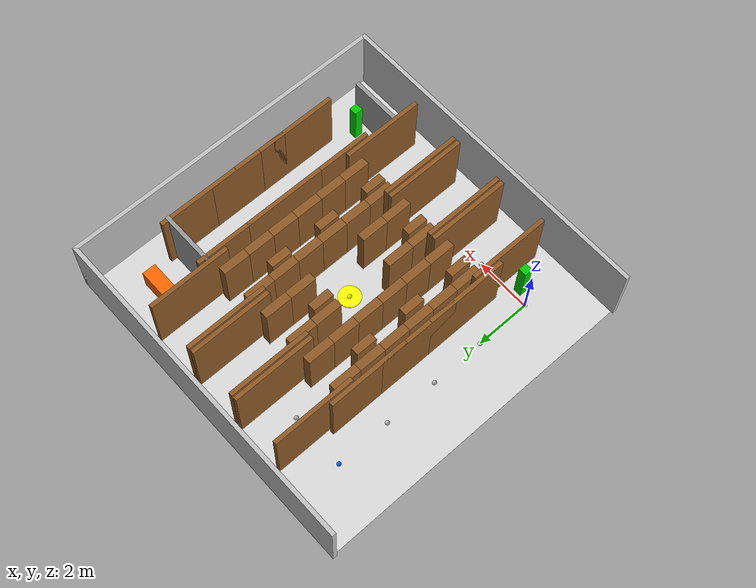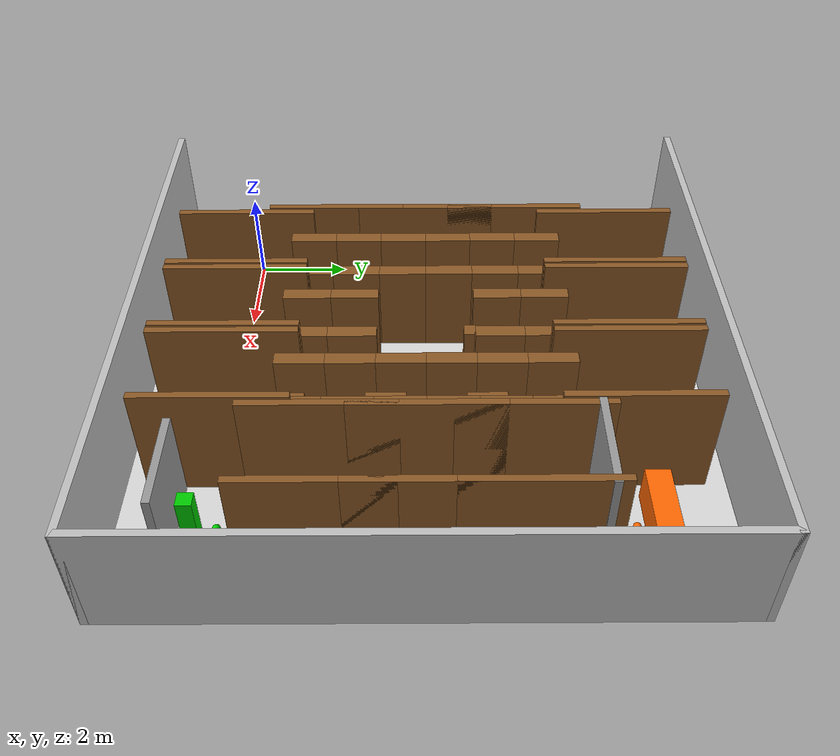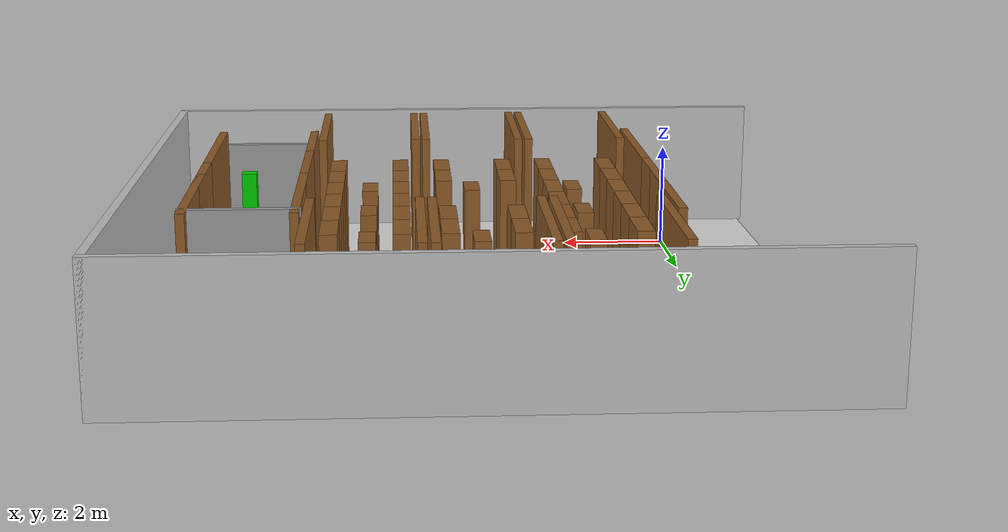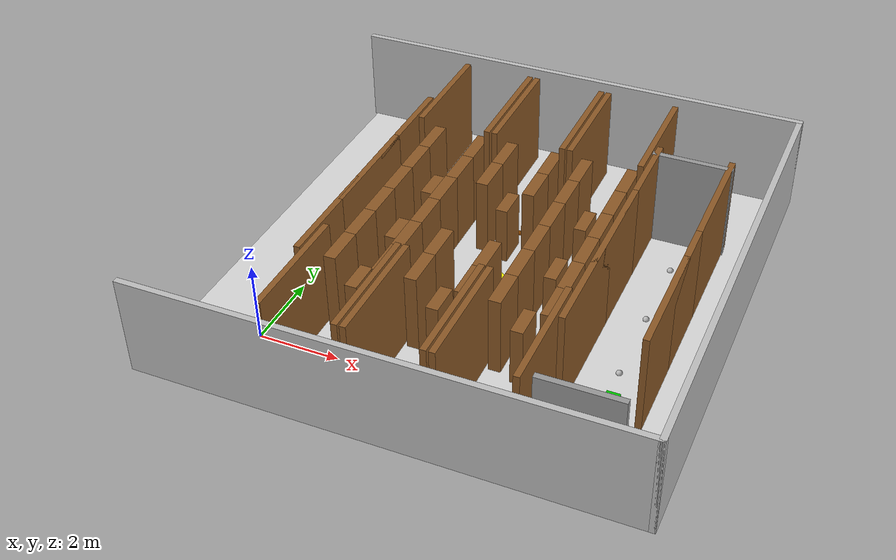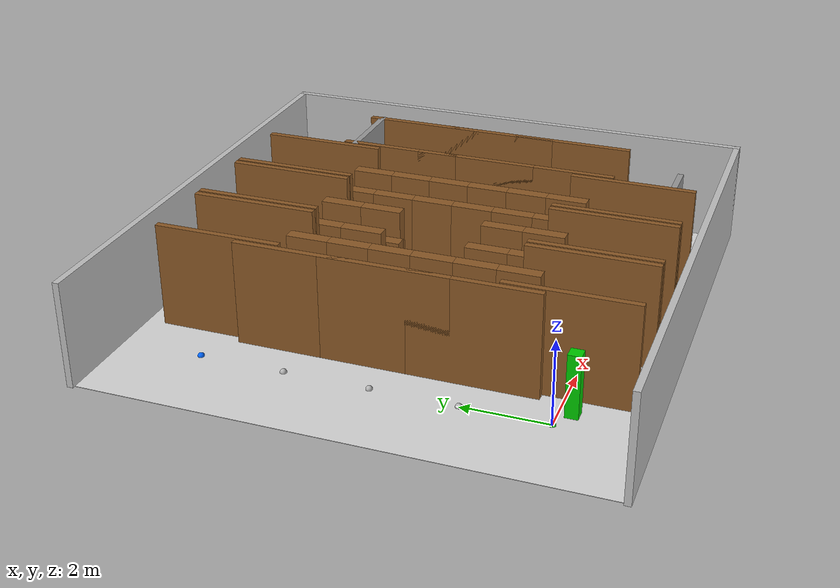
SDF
<sdf version="1.9">
 <world name="simple_5x5_grid">
  <model name="ground_plane">
   <static>true</static>
   <pose>4.0 4.0 0 0 0 0</pose>
   <link name="ground_link">
    <visual name="ground_visual">
     <geometry><box><size>12.0 12.0 0.01</size></box></geometry>
     <material><ambient>0.85 0.85 0.85 1.0</ambient><diffuse>0.85 0.85 0.85 1.0</diffuse></material>
    </visual>
    <collision name="ground_visual_collision">
     <geometry><box><size>12.0 12.0 0.01</size></box></geometry>
    </collision>
    <collision name="ground_collision">
     <geometry><plane><normal>0 0 1</normal><size>12.0 12.0</size></plane></geometry>
    </collision>
   </link>
  </model>
  <model name="wall_north">
   <static>true</static>
   <pose>4.0 10.0 1.25 0 0 0</pose>
   <link name="wall_north_link">
    <visual name="wall_north_visual">
     <geometry><box><size>12.15 0.15 2.5</size></box></geometry>
     <material><ambient>0.75 0.75 0.75 1.0</ambient><diffuse>0.75 0.75 0.75 1.0</diffuse></material>
    </visual>
    <collision name="wall_north_visual_collision">
     <geometry><box><size>12.15 0.15 2.5</size></box></geometry>
    </collision>
   </link>
  </model>
  <model name="wall_south">
   <static>true</static>
   <pose>4.0 -2.0 1.25 0 0 0</pose>
   <link name="wall_south_link">
    <visual name="wall_south_visual">
     <geometry><box><size>12.15 0.15 2.5</size></box></geometry>
     <material><ambient>0.75 0.75 0.75 1.0</ambient><diffuse>0.75 0.75 0.75 1.0</diffuse></material>
    </visual>
    <collision name="wall_south_visual_collision">
     <geometry><box><size>12.15 0.15 2.5</size></box></geometry>
    </collision>
   </link>
  </model>
  <model name="wall_east">
   <static>true</static>
   <pose>10.0 4.0 1.25 0 0 0</pose>
   <link name="wall_east_link">
    <visual name="wall_east_visual">
     <geometry><box><size>0.15 12.15 2.5</size></box></geometry>
     <material><ambient>0.75 0.75 0.75 1.0</ambient><diffuse>0.75 0.75 0.75 1.0</diffuse></material>
    </visual>
    <collision name="wall_east_visual_collision">
     <geometry><box><size>0.15 12.15 2.5</size></box></geometry>
    </collision>
   </link>
  </model>
  <model name="charger_DOCK_1_002">
   <static>true</static>
   <pose>0.5 -0.3 0.75 0 0 0</pose>
   <link name="charger_DOCK_1_002_link">
    <visual name="charger_DOCK_1_002_vis">
     <geometry><box><size>0.3 0.3 1.5</size></box></geometry>
     <material><ambient>0.0 0.8 0.0 1.0</ambient><diffuse>0.0 0.8 0.0 1.0</diffuse></material>
    </visual>
    <collision name="charger_DOCK_1_002_vis_collision">
     <geometry><box><size>0.3 0.3 1.5</size></box></geometry>
    </collision>
   </link>
  </model>
  <model name="aisle_L_N_01_003">
   <static>true</static>
   <pose>1.1 0 1.25 0 0 0</pose>
   <link name="aisle_L_N_01_003_link">
    <visual name="aisle_L_N_01_003_vis">
     <geometry><box><size>0.15 3.0 2.5</size></box></geometry>
     <material><ambient>0.55 0.35 0.15 1.0</ambient><diffuse>0.55 0.35 0.15 1.0</diffuse></material>
    </visual>
    <collision name="aisle_L_N_01_003_vis_collision">
     <geometry><box><size>0.15 3.0 2.5</size></box></geometry>
    </collision>
   </link>
  </model>
  <model name="aisle_R_N_01_004">
   <static>true</static>
   <pose>2.9 0 1.25 0 0 0</pose>
   <link name="aisle_R_N_01_004_link">
    <visual name="aisle_R_N_01_004_vis">
     <geometry><box><size>0.15 3.0 2.5</size></box></geometry>
     <material><ambient>0.55 0.35 0.15 1.0</ambient><diffuse>0.55 0.35 0.15 1.0</diffuse></material>
    </visual>
    <collision name="aisle_R_N_01_004_vis_collision">
     <geometry><box><size>0.15 3.0 2.5</size></box></geometry>
    </collision>
   </link>
  </model>
  <model name="aisle_L_N_02_005">
   <static>true</static>
   <pose>3.1 0 1.25 0 0 0</pose>
   <link name="aisle_L_N_02_005_link">
    <visual name="aisle_L_N_02_005_vis">
     <geometry><box><size>0.15 3.0 2.5</size></box></geometry>
     <material><ambient>0.55 0.35 0.15 1.0</ambient><diffuse>0.55 0.35 0.15 1.0</diffuse></material>
    </visual>
    <collision name="aisle_L_N_02_005_vis_collision">
     <geometry><box><size>0.15 3.0 2.5</size></box></geometry>
    </collision>
   </link>
  </model>
  <model name="aisle_R_N_02_006">
   <static>true</static>
   <pose>4.9 0 1.25 0 0 0</pose>
   <link name="aisle_R_N_02_006_link">
    <visual name="aisle_R_N_02_006_vis">
     <geometry><box><size>0.15 3.0 2.5</size></box></geometry>
     <material><ambient>0.55 0.35 0.15 1.0</ambient><diffuse>0.55 0.35 0.15 1.0</diffuse></material>
    </visual>
    <collision name="aisle_R_N_02_006_vis_collision">
     <geometry><box><size>0.15 3.0 2.5</size></box></geometry>
    </collision>
   </link>
  </model>
  <model name="aisle_L_N_03_007">
   <static>true</static>
   <pose>5.1 0 1.25 0 0 0</pose>
   <link name="aisle_L_N_03_007_link">
    <visual name="aisle_L_N_03_007_vis">
     <geometry><box><size>0.15 3.0 2.5</size></box></geometry>
     <material><ambient>0.55 0.35 0.15 1.0</ambient><diffuse>0.55 0.35 0.15 1.0</diffuse></material>
    </visual>
    <collision name="aisle_L_N_03_007_vis_collision">
     <geometry><box><size>0.15 3.0 2.5</size></box></geometry>
    </collision>
   </link>
  </model>
  <model name="aisle_R_N_03_008">
   <static>true</static>
   <pose>6.9 0 1.25 0 0 0</pose>
   <link name="aisle_R_N_03_008_link">
    <visual name="aisle_R_N_03_008_vis">
     <geometry><box><size>0.15 3.0 2.5</size></box></geometry>
     <material><ambient>0.55 0.35 0.15 1.0</ambient><diffuse>0.55 0.35 0.15 1.0</diffuse></material>
    </visual>
    <collision name="aisle_R_N_03_008_vis_collision">
     <geometry><box><size>0.15 3.0 2.5</size></box></geometry>
    </collision>
   </link>
  </model>
  <model name="dock_wall_DOCK_2_009">
   <static>true</static>
   <pose>8 -0.8 1.0 0 0 0</pose>
   <link name="dock_wall_DOCK_2_009_link">
    <visual name="dock_wall_DOCK_2_009_vis">
     <geometry><box><size>2.0 0.15 2.0</size></box></geometry>
     <material><ambient>0.6 0.6 0.6 1.0</ambient><diffuse>0.6 0.6 0.6 1.0</diffuse></material>
    </visual>
    <collision name="dock_wall_DOCK_2_009_vis_collision">
     <geometry><box><size>2.0 0.15 2.0</size></box></geometry>
    </collision>
   </link>
  </model>
  <model name="charger_DOCK_2_010">
   <static>true</static>
   <pose>8.5 -0.3 0.75 0 0 0</pose>
   <link name="charger_DOCK_2_010_link">
    <visual name="charger_DOCK_2_010_vis">
     <geometry><box><size>0.3 0.3 1.5</size></box></geometry>
     <material><ambient>0.0 0.8 0.0 1.0</ambient><diffuse>0.0 0.8 0.0 1.0</diffuse></material>
    </visual>
    <collision name="charger_DOCK_2_010_vis_collision">
     <geometry><box><size>0.3 0.3 1.5</size></box></geometry>
    </collision>
   </link>
  </model>
  <model name="aisle_R_N_10_012">
   <static>true</static>
   <pose>0.9 2 1.25 0 0 0</pose>
   <link name="aisle_R_N_10_012_link">
    <visual name="aisle_R_N_10_012_vis">
     <geometry><box><size>0.15 3.0 2.5</size></box></geometry>
     <material><ambient>0.55 0.35 0.15 1.0</ambient><diffuse>0.55 0.35 0.15 1.0</diffuse></material>
    </visual>
    <collision name="aisle_R_N_10_012_vis_collision">
     <geometry><box><size>0.15 3.0 2.5</size></box></geometry>
    </collision>
   </link>
  </model>
  <model name="rack_S_11_013">
   <static>true</static>
   <pose>1.4 1.5 1.0 0 0 0</pose>
   <link name="rack_S_11_013_link">
    <visual name="rack_S_11_013_vis">
     <geometry><box><size>0.3 1.0 2.0</size></box></geometry>
     <material><ambient>0.55 0.35 0.15 1.0</ambient><diffuse>0.55 0.35 0.15 1.0</diffuse></material>
    </visual>
    <collision name="rack_S_11_013_vis_collision">
     <geometry><box><size>0.3 1.0 2.0</size></box></geometry>
    </collision>
   </link>
  </model>
  <model name="rack_S_11_014">
   <static>true</static>
   <pose>1.4 2.5 1.0 0 0 0</pose>
   <link name="rack_S_11_014_link">
    <visual name="rack_S_11_014_vis">
     <geometry><box><size>0.3 1.0 2.0</size></box></geometry>
     <material><ambient>0.55 0.35 0.15 1.0</ambient><diffuse>0.55 0.35 0.15 1.0</diffuse></material>
    </visual>
    <collision name="rack_S_11_014_vis_collision">
     <geometry><box><size>0.3 1.0 2.0</size></box></geometry>
    </collision>
   </link>
  </model>
  <model name="rack_S_11_015">
   <static>true</static>
   <pose>2.6 1.5 1.0 0 0 0</pose>
   <link name="rack_S_11_015_link">
    <visual name="rack_S_11_015_vis">
     <geometry><box><size>0.3 1.0 2.0</size></box></geometry>
     <material><ambient>0.55 0.35 0.15 1.0</ambient><diffuse>0.55 0.35 0.15 1.0</diffuse></material>
    </visual>
    <collision name="rack_S_11_015_vis_collision">
     <geometry><box><size>0.3 1.0 2.0</size></box></geometry>
    </collision>
   </link>
  </model>
  <model name="rack_S_11_016">
   <static>true</static>
   <pose>2.6 2.5 1.0 0 0 0</pose>
   <link name="rack_S_11_016_link">
    <visual name="rack_S_11_016_vis">
     <geometry><box><size>0.3 1.0 2.0</size></box></geometry>
     <material><ambient>0.55 0.35 0.15 1.0</ambient><diffuse>0.55 0.35 0.15 1.0</diffuse></material>
    </visual>
    <collision name="rack_S_11_016_vis_collision">
     <geometry><box><size>0.3 1.0 2.0</size></box></geometry>
    </collision>
   </link>
  </model>
  <model name="rack_S_11_017">
   <static>true</static>
   <pose>2.0 1.2 0.75 0 0 0</pose>
   <link name="rack_S_11_017_link">
    <visual name="rack_S_11_017_vis">
     <geometry><box><size>0.3 0.8 1.5</size></box></geometry>
     <material><ambient>0.55 0.35 0.15 1.0</ambient><diffuse>0.55 0.35 0.15 1.0</diffuse></material>
    </visual>
    <collision name="rack_S_11_017_vis_collision">
     <geometry><box><size>0.3 0.8 1.5</size></box></geometry>
    </collision>
   </link>
  </model>
  <model name="rack_S_12_018">
   <static>true</static>
   <pose>3.4 1.5 1.0 0 0 0</pose>
   <link name="rack_S_12_018_link">
    <visual name="rack_S_12_018_vis">
     <geometry><box><size>0.3 1.0 2.0</size></box></geometry>
     <material><ambient>0.55 0.35 0.15 1.0</ambient><diffuse>0.55 0.35 0.15 1.0</diffuse></material>
    </visual>
    <collision name="rack_S_12_018_vis_collision">
     <geometry><box><size>0.3 1.0 2.0</size></box></geometry>
    </collision>
   </link>
  </model>
  <model name="rack_S_12_019">
   <static>true</static>
   <pose>3.4 2.5 1.0 0 0 0</pose>
   <link name="rack_S_12_019_link">
    <visual name="rack_S_12_019_vis">
     <geometry><box><size>0.3 1.0 2.0</size></box></geometry>
     <material><ambient>0.55 0.35 0.15 1.0</ambient><diffuse>0.55 0.35 0.15 1.0</diffuse></material>
    </visual>
    <collision name="rack_S_12_019_vis_collision">
     <geometry><box><size>0.3 1.0 2.0</size></box></geometry>
    </collision>
   </link>
  </model>
  <model name="rack_S_12_020">
   <static>true</static>
   <pose>4.6 1.5 1.0 0 0 0</pose>
   <link name="rack_S_12_020_link">
    <visual name="rack_S_12_020_vis">
     <geometry><box><size>0.3 1.0 2.0</size></box></geometry>
     <material><ambient>0.55 0.35 0.15 1.0</ambient><diffuse>0.55 0.35 0.15 1.0</diffuse></material>
    </visual>
    <collision name="rack_S_12_020_vis_collision">
     <geometry><box><size>0.3 1.0 2.0</size></box></geometry>
    </collision>
   </link>
  </model>
  <model name="rack_S_12_021">
   <static>true</static>
   <pose>4.6 2.5 1.0 0 0 0</pose>
   <link name="rack_S_12_021_link">
    <visual name="rack_S_12_021_vis">
     <geometry><box><size>0.3 1.0 2.0</size></box></geometry>
     <material><ambient>0.55 0.35 0.15 1.0</ambient><diffuse>0.55 0.35 0.15 1.0</diffuse></material>
    </visual>
    <collision name="rack_S_12_021_vis_collision">
     <geometry><box><size>0.3 1.0 2.0</size></box></geometry>
    </collision>
   </link>
  </model>
  <model name="rack_S_12_022">
   <static>true</static>
   <pose>4.0 1.2 0.75 0 0 0</pose>
   <link name="rack_S_12_022_link">
    <visual name="rack_S_12_022_vis">
     <geometry><box><size>0.3 0.8 1.5</size></box></geometry>
     <material><ambient>0.55 0.35 0.15 1.0</ambient><diffuse>0.55 0.35 0.15 1.0</diffuse></material>
    </visual>
    <collision name="rack_S_12_022_vis_collision">
     <geometry><box><size>0.3 0.8 1.5</size></box></geometry>
    </collision>
   </link>
  </model>
  <model name="rack_S_13_023">
   <static>true</static>
   <pose>5.4 1.5 1.0 0 0 0</pose>
   <link name="rack_S_13_023_link">
    <visual name="rack_S_13_023_vis">
     <geometry><box><size>0.3 1.0 2.0</size></box></geometry>
     <material><ambient>0.55 0.35 0.15 1.0</ambient><diffuse>0.55 0.35 0.15 1.0</diffuse></material>
    </visual>
    <collision name="rack_S_13_023_vis_collision">
     <geometry><box><size>0.3 1.0 2.0</size></box></geometry>
    </collision>
   </link>
  </model>
  <model name="rack_S_13_024">
   <static>true</static>
   <pose>5.4 2.5 1.0 0 0 0</pose>
   <link name="rack_S_13_024_link">
    <visual name="rack_S_13_024_vis">
     <geometry><box><size>0.3 1.0 2.0</size></box></geometry>
     <material><ambient>0.55 0.35 0.15 1.0</ambient><diffuse>0.55 0.35 0.15 1.0</diffuse></material>
    </visual>
    <collision name="rack_S_13_024_vis_collision">
     <geometry><box><size>0.3 1.0 2.0</size></box></geometry>
    </collision>
   </link>
  </model>
  <model name="rack_S_13_025">
   <static>true</static>
   <pose>6.6 1.5 1.0 0 0 0</pose>
   <link name="rack_S_13_025_link">
    <visual name="rack_S_13_025_vis">
     <geometry><box><size>0.3 1.0 2.0</size></box></geometry>
     <material><ambient>0.55 0.35 0.15 1.0</ambient><diffuse>0.55 0.35 0.15 1.0</diffuse></material>
    </visual>
    <collision name="rack_S_13_025_vis_collision">
     <geometry><box><size>0.3 1.0 2.0</size></box></geometry>
    </collision>
   </link>
  </model>
  <model name="rack_S_13_026">
   <static>true</static>
   <pose>6.6 2.5 1.0 0 0 0</pose>
   <link name="rack_S_13_026_link">
    <visual name="rack_S_13_026_vis">
     <geometry><box><size>0.3 1.0 2.0</size></box></geometry>
     <material><ambient>0.55 0.35 0.15 1.0</ambient><diffuse>0.55 0.35 0.15 1.0</diffuse></material>
    </visual>
    <collision name="rack_S_13_026_vis_collision">
     <geometry><box><size>0.3 1.0 2.0</size></box></geometry>
    </collision>
   </link>
  </model>
  <model name="rack_S_13_027">
   <static>true</static>
   <pose>6.0 1.2 0.75 0 0 0</pose>
   <link name="rack_S_13_027_link">
    <visual name="rack_S_13_027_vis">
     <geometry><box><size>0.3 0.8 1.5</size></box></geometry>
     <material><ambient>0.55 0.35 0.15 1.0</ambient><diffuse>0.55 0.35 0.15 1.0</diffuse></material>
    </visual>
    <collision name="rack_S_13_027_vis_collision">
     <geometry><box><size>0.3 0.8 1.5</size></box></geometry>
    </collision>
   </link>
  </model>
  <model name="aisle_L_N_14_028">
   <static>true</static>
   <pose>7.1 2 1.25 0 0 0</pose>
   <link name="aisle_L_N_14_028_link">
    <visual name="aisle_L_N_14_028_vis">
     <geometry><box><size>0.15 3.0 2.5</size></box></geometry>
     <material><ambient>0.55 0.35 0.15 1.0</ambient><diffuse>0.55 0.35 0.15 1.0</diffuse></material>
    </visual>
    <collision name="aisle_L_N_14_028_vis_collision">
     <geometry><box><size>0.15 3.0 2.5</size></box></geometry>
    </collision>
   </link>
  </model>
  <model name="aisle_R_N_14_029">
   <static>true</static>
   <pose>8.9 2 1.25 0 0 0</pose>
   <link name="aisle_R_N_14_029_link">
    <visual name="aisle_R_N_14_029_vis">
     <geometry><box><size>0.15 3.0 2.5</size></box></geometry>
     <material><ambient>0.55 0.35 0.15 1.0</ambient><diffuse>0.55 0.35 0.15 1.0</diffuse></material>
    </visual>
    <collision name="aisle_R_N_14_029_vis_collision">
     <geometry><box><size>0.15 3.0 2.5</size></box></geometry>
    </collision>
   </link>
  </model>
  <model name="aisle_R_N_20_031">
   <static>true</static>
   <pose>0.9 4 1.25 0 0 0</pose>
   <link name="aisle_R_N_20_031_link">
    <visual name="aisle_R_N_20_031_vis">
     <geometry><box><size>0.15 3.0 2.5</size></box></geometry>
     <material><ambient>0.55 0.35 0.15 1.0</ambient><diffuse>0.55 0.35 0.15 1.0</diffuse></material>
    </visual>
    <collision name="aisle_R_N_20_031_vis_collision">
     <geometry><box><size>0.15 3.0 2.5</size></box></geometry>
    </collision>
   </link>
  </model>
  <model name="rack_S_21_032">
   <static>true</static>
   <pose>1.4 3.5 1.0 0 0 0</pose>
   <link name="rack_S_21_032_link">
    <visual name="rack_S_21_032_vis">
     <geometry><box><size>0.3 1.0 2.0</size></box></geometry>
     <material><ambient>0.55 0.35 0.15 1.0</ambient><diffuse>0.55 0.35 0.15 1.0</diffuse></material>
    </visual>
    <collision name="rack_S_21_032_vis_collision">
     <geometry><box><size>0.3 1.0 2.0</size></box></geometry>
    </collision>
   </link>
  </model>
  <model name="rack_S_21_033">
   <static>true</static>
   <pose>1.4 4.5 1.0 0 0 0</pose>
   <link name="rack_S_21_033_link">
    <visual name="rack_S_21_033_vis">
     <geometry><box><size>0.3 1.0 2.0</size></box></geometry>
     <material><ambient>0.55 0.35 0.15 1.0</ambient><diffuse>0.55 0.35 0.15 1.0</diffuse></material>
    </visual>
    <collision name="rack_S_21_033_vis_collision">
     <geometry><box><size>0.3 1.0 2.0</size></box></geometry>
    </collision>
   </link>
  </model>
  <model name="rack_S_21_034">
   <static>true</static>
   <pose>2.6 3.5 1.0 0 0 0</pose>
   <link name="rack_S_21_034_link">
    <visual name="rack_S_21_034_vis">
     <geometry><box><size>0.3 1.0 2.0</size></box></geometry>
     <material><ambient>0.55 0.35 0.15 1.0</ambient><diffuse>0.55 0.35 0.15 1.0</diffuse></material>
    </visual>
    <collision name="rack_S_21_034_vis_collision">
     <geometry><box><size>0.3 1.0 2.0</size></box></geometry>
    </collision>
   </link>
  </model>
  <model name="rack_S_21_035">
   <static>true</static>
   <pose>2.6 4.5 1.0 0 0 0</pose>
   <link name="rack_S_21_035_link">
    <visual name="rack_S_21_035_vis">
     <geometry><box><size>0.3 1.0 2.0</size></box></geometry>
     <material><ambient>0.55 0.35 0.15 1.0</ambient><diffuse>0.55 0.35 0.15 1.0</diffuse></material>
    </visual>
    <collision name="rack_S_21_035_vis_collision">
     <geometry><box><size>0.3 1.0 2.0</size></box></geometry>
    </collision>
   </link>
  </model>
  <model name="rack_S_21_036">
   <static>true</static>
   <pose>2.0 3.2 0.75 0 0 0</pose>
   <link name="rack_S_21_036_link">
    <visual name="rack_S_21_036_vis">
     <geometry><box><size>0.3 0.8 1.5</size></box></geometry>
     <material><ambient>0.55 0.35 0.15 1.0</ambient><diffuse>0.55 0.35 0.15 1.0</diffuse></material>
    </visual>
    <collision name="rack_S_21_036_vis_collision">
     <geometry><box><size>0.3 0.8 1.5</size></box></geometry>
    </collision>
   </link>
  </model>
  <model name="hub_HUB_037">
   <static>true</static>
   <pose>4 4 0.01 0 0 0</pose>
   <link name="hub_HUB_037_link">
    <visual name="hub_HUB_037_vis">
     <geometry><cylinder><radius>0.4</radius><length>0.02</length></cylinder></geometry>
     <material><ambient>1.0 1.0 0.0 1.0</ambient><diffuse>1.0 1.0 0.0 1.0</diffuse></material>
    </visual>
    <collision name="hub_HUB_037_vis_collision">
     <geometry><cylinder><radius>0.4</radius><length>0.02</length></cylinder></geometry>
    </collision>
   </link>
  </model>
  <model name="rack_S_23_038">
   <static>true</static>
   <pose>5.4 3.5 1.0 0 0 0</pose>
   <link name="rack_S_23_038_link">
    <visual name="rack_S_23_038_vis">
     <geometry><box><size>0.3 1.0 2.0</size></box></geometry>
     <material><ambient>0.55 0.35 0.15 1.0</ambient><diffuse>0.55 0.35 0.15 1.0</diffuse></material>
    </visual>
    <collision name="rack_S_23_038_vis_collision">
     <geometry><box><size>0.3 1.0 2.0</size></box></geometry>
    </collision>
   </link>
  </model>
  <model name="rack_S_23_039">
   <static>true</static>
   <pose>5.4 4.5 1.0 0 0 0</pose>
   <link name="rack_S_23_039_link">
    <visual name="rack_S_23_039_vis">
     <geometry><box><size>0.3 1.0 2.0</size></box></geometry>
     <material><ambient>0.55 0.35 0.15 1.0</ambient><diffuse>0.55 0.35 0.15 1.0</diffuse></material>
    </visual>
    <collision name="rack_S_23_039_vis_collision">
     <geometry><box><size>0.3 1.0 2.0</size></box></geometry>
    </collision>
   </link>
  </model>
  <model name="rack_S_23_040">
   <static>true</static>
   <pose>6.6 3.5 1.0 0 0 0</pose>
   <link name="rack_S_23_040_link">
    <visual name="rack_S_23_040_vis">
     <geometry><box><size>0.3 1.0 2.0</size></box></geometry>
     <material><ambient>0.55 0.35 0.15 1.0</ambient><diffuse>0.55 0.35 0.15 1.0</diffuse></material>
    </visual>
    <collision name="rack_S_23_040_vis_collision">
     <geometry><box><size>0.3 1.0 2.0</size></box></geometry>
    </collision>
   </link>
  </model>
  <model name="rack_S_23_041">
   <static>true</static>
   <pose>6.6 4.5 1.0 0 0 0</pose>
   <link name="rack_S_23_041_link">
    <visual name="rack_S_23_041_vis">
     <geometry><box><size>0.3 1.0 2.0</size></box></geometry>
     <material><ambient>0.55 0.35 0.15 1.0</ambient><diffuse>0.55 0.35 0.15 1.0</diffuse></material>
    </visual>
    <collision name="rack_S_23_041_vis_collision">
     <geometry><box><size>0.3 1.0 2.0</size></box></geometry>
    </collision>
   </link>
  </model>
  <model name="rack_S_23_042">
   <static>true</static>
   <pose>6.0 3.2 0.75 0 0 0</pose>
   <link name="rack_S_23_042_link">
    <visual name="rack_S_23_042_vis">
     <geometry><box><size>0.3 0.8 1.5</size></box></geometry>
     <material><ambient>0.55 0.35 0.15 1.0</ambient><diffuse>0.55 0.35 0.15 1.0</diffuse></material>
    </visual>
    <collision name="rack_S_23_042_vis_collision">
     <geometry><box><size>0.3 0.8 1.5</size></box></geometry>
    </collision>
   </link>
  </model>
  <model name="aisle_L_N_24_043">
   <static>true</static>
   <pose>7.1 4 1.25 0 0 0</pose>
   <link name="aisle_L_N_24_043_link">
    <visual name="aisle_L_N_24_043_vis">
     <geometry><box><size>0.15 3.0 2.5</size></box></geometry>
     <material><ambient>0.55 0.35 0.15 1.0</ambient><diffuse>0.55 0.35 0.15 1.0</diffuse></material>
    </visual>
    <collision name="aisle_L_N_24_043_vis_collision">
     <geometry><box><size>0.15 3.0 2.5</size></box></geometry>
    </collision>
   </link>
  </model>
  <model name="aisle_R_N_24_044">
   <static>true</static>
   <pose>8.9 4 1.25 0 0 0</pose>
   <link name="aisle_R_N_24_044_link">
    <visual name="aisle_R_N_24_044_vis">
     <geometry><box><size>0.15 3.0 2.5</size></box></geometry>
     <material><ambient>0.55 0.35 0.15 1.0</ambient><diffuse>0.55 0.35 0.15 1.0</diffuse></material>
    </visual>
    <collision name="aisle_R_N_24_044_vis_collision">
     <geometry><box><size>0.15 3.0 2.5</size></box></geometry>
    </collision>
   </link>
  </model>
  <model name="aisle_R_N_30_046">
   <static>true</static>
   <pose>0.9 6 1.25 0 0 0</pose>
   <link name="aisle_R_N_30_046_link">
    <visual name="aisle_R_N_30_046_vis">
     <geometry><box><size>0.15 3.0 2.5</size></box></geometry>
     <material><ambient>0.55 0.35 0.15 1.0</ambient><diffuse>0.55 0.35 0.15 1.0</diffuse></material>
    </visual>
    <collision name="aisle_R_N_30_046_vis_collision">
     <geometry><box><size>0.15 3.0 2.5</size></box></geometry>
    </collision>
   </link>
  </model>
  <model name="rack_S_31_047">
   <static>true</static>
   <pose>1.4 5.5 1.0 0 0 0</pose>
   <link name="rack_S_31_047_link">
    <visual name="rack_S_31_047_vis">
     <geometry><box><size>0.3 1.0 2.0</size></box></geometry>
     <material><ambient>0.55 0.35 0.15 1.0</ambient><diffuse>0.55 0.35 0.15 1.0</diffuse></material>
    </visual>
    <collision name="rack_S_31_047_vis_collision">
     <geometry><box><size>0.3 1.0 2.0</size></box></geometry>
    </collision>
   </link>
  </model>
  <model name="rack_S_31_048">
   <static>true</static>
   <pose>1.4 6.5 1.0 0 0 0</pose>
   <link name="rack_S_31_048_link">
    <visual name="rack_S_31_048_vis">
     <geometry><box><size>0.3 1.0 2.0</size></box></geometry>
     <material><ambient>0.55 0.35 0.15 1.0</ambient><diffuse>0.55 0.35 0.15 1.0</diffuse></material>
    </visual>
    <collision name="rack_S_31_048_vis_collision">
     <geometry><box><size>0.3 1.0 2.0</size></box></geometry>
    </collision>
   </link>
  </model>
  <model name="rack_S_31_049">
   <static>true</static>
   <pose>2.6 5.5 1.0 0 0 0</pose>
   <link name="rack_S_31_049_link">
    <visual name="rack_S_31_049_vis">
     <geometry><box><size>0.3 1.0 2.0</size></box></geometry>
     <material><ambient>0.55 0.35 0.15 1.0</ambient><diffuse>0.55 0.35 0.15 1.0</diffuse></material>
    </visual>
    <collision name="rack_S_31_049_vis_collision">
     <geometry><box><size>0.3 1.0 2.0</size></box></geometry>
    </collision>
   </link>
  </model>
  <model name="rack_S_31_050">
   <static>true</static>
   <pose>2.6 6.5 1.0 0 0 0</pose>
   <link name="rack_S_31_050_link">
    <visual name="rack_S_31_050_vis">
     <geometry><box><size>0.3 1.0 2.0</size></box></geometry>
     <material><ambient>0.55 0.35 0.15 1.0</ambient><diffuse>0.55 0.35 0.15 1.0</diffuse></material>
    </visual>
    <collision name="rack_S_31_050_vis_collision">
     <geometry><box><size>0.3 1.0 2.0</size></box></geometry>
    </collision>
   </link>
  </model>
  <model name="rack_S_31_051">
   <static>true</static>
   <pose>2.0 5.2 0.75 0 0 0</pose>
   <link name="rack_S_31_051_link">
    <visual name="rack_S_31_051_vis">
     <geometry><box><size>0.3 0.8 1.5</size></box></geometry>
     <material><ambient>0.55 0.35 0.15 1.0</ambient><diffuse>0.55 0.35 0.15 1.0</diffuse></material>
    </visual>
    <collision name="rack_S_31_051_vis_collision">
     <geometry><box><size>0.3 0.8 1.5</size></box></geometry>
    </collision>
   </link>
  </model>
  <model name="rack_S_32_052">
   <static>true</static>
   <pose>3.4 5.5 1.0 0 0 0</pose>
   <link name="rack_S_32_052_link">
    <visual name="rack_S_32_052_vis">
     <geometry><box><size>0.3 1.0 2.0</size></box></geometry>
     <material><ambient>0.55 0.35 0.15 1.0</ambient><diffuse>0.55 0.35 0.15 1.0</diffuse></material>
    </visual>
    <collision name="rack_S_32_052_vis_collision">
     <geometry><box><size>0.3 1.0 2.0</size></box></geometry>
    </collision>
   </link>
  </model>
  <model name="rack_S_32_053">
   <static>true</static>
   <pose>3.4 6.5 1.0 0 0 0</pose>
   <link name="rack_S_32_053_link">
    <visual name="rack_S_32_053_vis">
     <geometry><box><size>0.3 1.0 2.0</size></box></geometry>
     <material><ambient>0.55 0.35 0.15 1.0</ambient><diffuse>0.55 0.35 0.15 1.0</diffuse></material>
    </visual>
    <collision name="rack_S_32_053_vis_collision">
     <geometry><box><size>0.3 1.0 2.0</size></box></geometry>
    </collision>
   </link>
  </model>
  <model name="rack_S_32_054">
   <static>true</static>
   <pose>4.6 5.5 1.0 0 0 0</pose>
   <link name="rack_S_32_054_link">
    <visual name="rack_S_32_054_vis">
     <geometry><box><size>0.3 1.0 2.0</size></box></geometry>
     <material><ambient>0.55 0.35 0.15 1.0</ambient><diffuse>0.55 0.35 0.15 1.0</diffuse></material>
    </visual>
    <collision name="rack_S_32_054_vis_collision">
     <geometry><box><size>0.3 1.0 2.0</size></box></geometry>
    </collision>
   </link>
  </model>
  <model name="rack_S_32_055">
   <static>true</static>
   <pose>4.6 6.5 1.0 0 0 0</pose>
   <link name="rack_S_32_055_link">
    <visual name="rack_S_32_055_vis">
     <geometry><box><size>0.3 1.0 2.0</size></box></geometry>
     <material><ambient>0.55 0.35 0.15 1.0</ambient><diffuse>0.55 0.35 0.15 1.0</diffuse></material>
    </visual>
    <collision name="rack_S_32_055_vis_collision">
     <geometry><box><size>0.3 1.0 2.0</size></box></geometry>
    </collision>
   </link>
  </model>
  <model name="rack_S_32_056">
   <static>true</static>
   <pose>4.0 5.2 0.75 0 0 0</pose>
   <link name="rack_S_32_056_link">
    <visual name="rack_S_32_056_vis">
     <geometry><box><size>0.3 0.8 1.5</size></box></geometry>
     <material><ambient>0.55 0.35 0.15 1.0</ambient><diffuse>0.55 0.35 0.15 1.0</diffuse></material>
    </visual>
    <collision name="rack_S_32_056_vis_collision">
     <geometry><box><size>0.3 0.8 1.5</size></box></geometry>
    </collision>
   </link>
  </model>
  <model name="rack_S_33_057">
   <static>true</static>
   <pose>5.4 5.5 1.0 0 0 0</pose>
   <link name="rack_S_33_057_link">
    <visual name="rack_S_33_057_vis">
     <geometry><box><size>0.3 1.0 2.0</size></box></geometry>
     <material><ambient>0.55 0.35 0.15 1.0</ambient><diffuse>0.55 0.35 0.15 1.0</diffuse></material>
    </visual>
    <collision name="rack_S_33_057_vis_collision">
     <geometry><box><size>0.3 1.0 2.0</size></box></geometry>
    </collision>
   </link>
  </model>
  <model name="rack_S_33_058">
   <static>true</static>
   <pose>5.4 6.5 1.0 0 0 0</pose>
   <link name="rack_S_33_058_link">
    <visual name="rack_S_33_058_vis">
     <geometry><box><size>0.3 1.0 2.0</size></box></geometry>
     <material><ambient>0.55 0.35 0.15 1.0</ambient><diffuse>0.55 0.35 0.15 1.0</diffuse></material>
    </visual>
    <collision name="rack_S_33_058_vis_collision">
     <geometry><box><size>0.3 1.0 2.0</size></box></geometry>
    </collision>
   </link>
  </model>
  <model name="rack_S_33_059">
   <static>true</static>
   <pose>6.6 5.5 1.0 0 0 0</pose>
   <link name="rack_S_33_059_link">
    <visual name="rack_S_33_059_vis">
     <geometry><box><size>0.3 1.0 2.0</size></box></geometry>
     <material><ambient>0.55 0.35 0.15 1.0</ambient><diffuse>0.55 0.35 0.15 1.0</diffuse></material>
    </visual>
    <collision name="rack_S_33_059_vis_collision">
     <geometry><box><size>0.3 1.0 2.0</size></box></geometry>
    </collision>
   </link>
  </model>
  <model name="rack_S_33_060">
   <static>true</static>
   <pose>6.6 6.5 1.0 0 0 0</pose>
   <link name="rack_S_33_060_link">
    <visual name="rack_S_33_060_vis">
     <geometry><box><size>0.3 1.0 2.0</size></box></geometry>
     <material><ambient>0.55 0.35 0.15 1.0</ambient><diffuse>0.55 0.35 0.15 1.0</diffuse></material>
    </visual>
    <collision name="rack_S_33_060_vis_collision">
     <geometry><box><size>0.3 1.0 2.0</size></box></geometry>
    </collision>
   </link>
  </model>
  <model name="rack_S_33_061">
   <static>true</static>
   <pose>6.0 5.2 0.75 0 0 0</pose>
   <link name="rack_S_33_061_link">
    <visual name="rack_S_33_061_vis">
     <geometry><box><size>0.3 0.8 1.5</size></box></geometry>
     <material><ambient>0.55 0.35 0.15 1.0</ambient><diffuse>0.55 0.35 0.15 1.0</diffuse></material>
    </visual>
    <collision name="rack_S_33_061_vis_collision">
     <geometry><box><size>0.3 0.8 1.5</size></box></geometry>
    </collision>
   </link>
  </model>
  <model name="aisle_L_N_34_062">
   <static>true</static>
   <pose>7.1 6 1.25 0 0 0</pose>
   <link name="aisle_L_N_34_062_link">
    <visual name="aisle_L_N_34_062_vis">
     <geometry><box><size>0.15 3.0 2.5</size></box></geometry>
     <material><ambient>0.55 0.35 0.15 1.0</ambient><diffuse>0.55 0.35 0.15 1.0</diffuse></material>
    </visual>
    <collision name="aisle_L_N_34_062_vis_collision">
     <geometry><box><size>0.15 3.0 2.5</size></box></geometry>
    </collision>
   </link>
  </model>
  <model name="aisle_R_N_34_063">
   <static>true</static>
   <pose>8.9 6 1.25 0 0 0</pose>
   <link name="aisle_R_N_34_063_link">
    <visual name="aisle_R_N_34_063_vis">
     <geometry><box><size>0.15 3.0 2.5</size></box></geometry>
     <material><ambient>0.55 0.35 0.15 1.0</ambient><diffuse>0.55 0.35 0.15 1.0</diffuse></material>
    </visual>
    <collision name="aisle_R_N_34_063_vis_collision">
     <geometry><box><size>0.15 3.0 2.5</size></box></geometry>
    </collision>
   </link>
  </model>
  <model name="aisle_L_N_41_066">
   <static>true</static>
   <pose>1.1 8 1.25 0 0 0</pose>
   <link name="aisle_L_N_41_066_link">
    <visual name="aisle_L_N_41_066_vis">
     <geometry><box><size>0.15 3.0 2.5</size></box></geometry>
     <material><ambient>0.55 0.35 0.15 1.0</ambient><diffuse>0.55 0.35 0.15 1.0</diffuse></material>
    </visual>
    <collision name="aisle_L_N_41_066_vis_collision">
     <geometry><box><size>0.15 3.0 2.5</size></box></geometry>
    </collision>
   </link>
  </model>
  <model name="aisle_R_N_41_067">
   <static>true</static>
   <pose>2.9 8 1.25 0 0 0</pose>
   <link name="aisle_R_N_41_067_link">
    <visual name="aisle_R_N_41_067_vis">
     <geometry><box><size>0.15 3.0 2.5</size></box></geometry>
     <material><ambient>0.55 0.35 0.15 1.0</ambient><diffuse>0.55 0.35 0.15 1.0</diffuse></material>
    </visual>
    <collision name="aisle_R_N_41_067_vis_collision">
     <geometry><box><size>0.15 3.0 2.5</size></box></geometry>
    </collision>
   </link>
  </model>
  <model name="aisle_L_N_42_068">
   <static>true</static>
   <pose>3.1 8 1.25 0 0 0</pose>
   <link name="aisle_L_N_42_068_link">
    <visual name="aisle_L_N_42_068_vis">
     <geometry><box><size>0.15 3.0 2.5</size></box></geometry>
     <material><ambient>0.55 0.35 0.15 1.0</ambient><diffuse>0.55 0.35 0.15 1.0</diffuse></material>
    </visual>
    <collision name="aisle_L_N_42_068_vis_collision">
     <geometry><box><size>0.15 3.0 2.5</size></box></geometry>
    </collision>
   </link>
  </model>
  <model name="aisle_R_N_42_069">
   <static>true</static>
   <pose>4.9 8 1.25 0 0 0</pose>
   <link name="aisle_R_N_42_069_link">
    <visual name="aisle_R_N_42_069_vis">
     <geometry><box><size>0.15 3.0 2.5</size></box></geometry>
     <material><ambient>0.55 0.35 0.15 1.0</ambient><diffuse>0.55 0.35 0.15 1.0</diffuse></material>
    </visual>
    <collision name="aisle_R_N_42_069_vis_collision">
     <geometry><box><size>0.15 3.0 2.5</size></box></geometry>
    </collision>
   </link>
  </model>
  <model name="aisle_L_N_43_070">
   <static>true</static>
   <pose>5.1 8 1.25 0 0 0</pose>
   <link name="aisle_L_N_43_070_link">
    <visual name="aisle_L_N_43_070_vis">
     <geometry><box><size>0.15 3.0 2.5</size></box></geometry>
     <material><ambient>0.55 0.35 0.15 1.0</ambient><diffuse>0.55 0.35 0.15 1.0</diffuse></material>
    </visual>
    <collision name="aisle_L_N_43_070_vis_collision">
     <geometry><box><size>0.15 3.0 2.5</size></box></geometry>
    </collision>
   </link>
  </model>
  <model name="aisle_R_N_43_071">
   <static>true</static>
   <pose>6.9 8 1.25 0 0 0</pose>
   <link name="aisle_R_N_43_071_link">
    <visual name="aisle_R_N_43_071_vis">
     <geometry><box><size>0.15 3.0 2.5</size></box></geometry>
     <material><ambient>0.55 0.35 0.15 1.0</ambient><diffuse>0.55 0.35 0.15 1.0</diffuse></material>
    </visual>
    <collision name="aisle_R_N_43_071_vis_collision">
     <geometry><box><size>0.15 3.0 2.5</size></box></geometry>
    </collision>
   </link>
  </model>
  <model name="drop_conv_DROP_1_072">
   <static>true</static>
   <pose>8 8.4 0.4 0 0 0</pose>
   <link name="drop_conv_DROP_1_072_link">
    <visual name="drop_conv_DROP_1_072_vis">
     <geometry><box><size>1.5 0.5 0.8</size></box></geometry>
     <material><ambient>1.0 0.4 0.0 1.0</ambient><diffuse>1.0 0.4 0.0 1.0</diffuse></material>
    </visual>
    <collision name="drop_conv_DROP_1_072_vis_collision">
     <geometry><box><size>1.5 0.5 0.8</size></box></geometry>
    </collision>
   </link>
  </model>
  <model name="drop_wall_DROP_1_073">
   <static>true</static>
   <pose>8 7.2 1.25 0 0 0</pose>
   <link name="drop_wall_DROP_1_073_link">
    <visual name="drop_wall_DROP_1_073_vis">
     <geometry><box><size>2.0 0.15 2.5</size></box></geometry>
     <material><ambient>0.6 0.6 0.6 1.0</ambient><diffuse>0.6 0.6 0.6 1.0</diffuse></material>
    </visual>
    <collision name="drop_wall_DROP_1_073_vis_collision">
     <geometry><box><size>2.0 0.15 2.5</size></box></geometry>
    </collision>
   </link>
  </model>
  <model name="node_markers">
   <static>true</static>
   <pose>0 0 0.01 0 0 0</pose>
   <link name="markers_link">
    <visual name="marker_DOCK_1">
     <geometry><sphere><radius>0.08</radius></sphere></geometry>
     <material><ambient>0.0 0.8 0.0 1.0</ambient><diffuse>0.0 0.8 0.0 1.0</diffuse></material>
    </visual>
    <visual name="marker_N_01">
     <pose>2 0 0 0 0 0</pose>
     <geometry><sphere><radius>0.08</radius></sphere></geometry>
     <material><ambient>0.7 0.7 0.7 1.0</ambient><diffuse>0.7 0.7 0.7 1.0</diffuse></material>
    </visual>
    <visual name="marker_N_02">
     <pose>4 0 0 0 0 0</pose>
     <geometry><sphere><radius>0.08</radius></sphere></geometry>
     <material><ambient>0.7 0.7 0.7 1.0</ambient><diffuse>0.7 0.7 0.7 1.0</diffuse></material>
    </visual>
    <visual name="marker_N_03">
     <pose>6 0 0 0 0 0</pose>
     <geometry><sphere><radius>0.08</radius></sphere></geometry>
     <material><ambient>0.7 0.7 0.7 1.0</ambient><diffuse>0.7 0.7 0.7 1.0</diffuse></material>
    </visual>
    <visual name="marker_DOCK_2">
     <pose>8 0 0 0 0 0</pose>
     <geometry><sphere><radius>0.08</radius></sphere></geometry>
     <material><ambient>0.0 0.8 0.0 1.0</ambient><diffuse>0.0 0.8 0.0 1.0</diffuse></material>
    </visual>
    <visual name="marker_N_10">
     <pose>0 2 0 0 0 0</pose>
     <geometry><sphere><radius>0.08</radius></sphere></geometry>
     <material><ambient>0.7 0.7 0.7 1.0</ambient><diffuse>0.7 0.7 0.7 1.0</diffuse></material>
    </visual>
    <visual name="marker_S_11">
     <pose>2 2 0 0 0 0</pose>
     <geometry><sphere><radius>0.08</radius></sphere></geometry>
     <material><ambient>0.6 0.3 0.0 1.0</ambient><diffuse>0.6 0.3 0.0 1.0</diffuse></material>
    </visual>
    <visual name="marker_S_12">
     <pose>4 2 0 0 0 0</pose>
     <geometry><sphere><radius>0.08</radius></sphere></geometry>
     <material><ambient>0.6 0.3 0.0 1.0</ambient><diffuse>0.6 0.3 0.0 1.0</diffuse></material>
    </visual>
    <visual name="marker_S_13">
     <pose>6 2 0 0 0 0</pose>
     <geometry><sphere><radius>0.08</radius></sphere></geometry>
     <material><ambient>0.6 0.3 0.0 1.0</ambient><diffuse>0.6 0.3 0.0 1.0</diffuse></material>
    </visual>
    <visual name="marker_N_14">
     <pose>8 2 0 0 0 0</pose>
     <geometry><sphere><radius>0.08</radius></sphere></geometry>
     <material><ambient>0.7 0.7 0.7 1.0</ambient><diffuse>0.7 0.7 0.7 1.0</diffuse></material>
    </visual>
    <visual name="marker_N_20">
     <pose>0 4 0 0 0 0</pose>
     <geometry><sphere><radius>0.08</radius></sphere></geometry>
     <material><ambient>0.7 0.7 0.7 1.0</ambient><diffuse>0.7 0.7 0.7 1.0</diffuse></material>
    </visual>
    <visual name="marker_S_21">
     <pose>2 4 0 0 0 0</pose>
     <geometry><sphere><radius>0.08</radius></sphere></geometry>
     <material><ambient>0.6 0.3 0.0 1.0</ambient><diffuse>0.6 0.3 0.0 1.0</diffuse></material>
    </visual>
    <visual name="marker_HUB">
     <pose>4 4 0 0 0 0</pose>
     <geometry><sphere><radius>0.08</radius></sphere></geometry>
     <material><ambient>1.0 1.0 0.0 1.0</ambient><diffuse>1.0 1.0 0.0 1.0</diffuse></material>
    </visual>
    <visual name="marker_S_23">
     <pose>6 4 0 0 0 0</pose>
     <geometry><sphere><radius>0.08</radius></sphere></geometry>
     <material><ambient>0.6 0.3 0.0 1.0</ambient><diffuse>0.6 0.3 0.0 1.0</diffuse></material>
    </visual>
    <visual name="marker_N_24">
     <pose>8 4 0 0 0 0</pose>
     <geometry><sphere><radius>0.08</radius></sphere></geometry>
     <material><ambient>0.7 0.7 0.7 1.0</ambient><diffuse>0.7 0.7 0.7 1.0</diffuse></material>
    </visual>
    <visual name="marker_N_30">
     <pose>0 6 0 0 0 0</pose>
     <geometry><sphere><radius>0.08</radius></sphere></geometry>
     <material><ambient>0.7 0.7 0.7 1.0</ambient><diffuse>0.7 0.7 0.7 1.0</diffuse></material>
    </visual>
    <visual name="marker_S_31">
     <pose>2 6 0 0 0 0</pose>
     <geometry><sphere><radius>0.08</radius></sphere></geometry>
     <material><ambient>0.6 0.3 0.0 1.0</ambient><diffuse>0.6 0.3 0.0 1.0</diffuse></material>
    </visual>
    <visual name="marker_S_32">
     <pose>4 6 0 0 0 0</pose>
     <geometry><sphere><radius>0.08</radius></sphere></geometry>
     <material><ambient>0.6 0.3 0.0 1.0</ambient><diffuse>0.6 0.3 0.0 1.0</diffuse></material>
    </visual>
    <visual name="marker_S_33">
     <pose>6 6 0 0 0 0</pose>
     <geometry><sphere><radius>0.08</radius></sphere></geometry>
     <material><ambient>0.6 0.3 0.0 1.0</ambient><diffuse>0.6 0.3 0.0 1.0</diffuse></material>
    </visual>
    <visual name="marker_N_34">
     <pose>8 6 0 0 0 0</pose>
     <geometry><sphere><radius>0.08</radius></sphere></geometry>
     <material><ambient>0.7 0.7 0.7 1.0</ambient><diffuse>0.7 0.7 0.7 1.0</diffuse></material>
    </visual>
    <visual name="marker_PICK_1">
     <pose>0 8 0 0 0 0</pose>
     <geometry><sphere><radius>0.08</radius></sphere></geometry>
     <material><ambient>0.0 0.4 1.0 1.0</ambient><diffuse>0.0 0.4 1.0 1.0</diffuse></material>
    </visual>
    <visual name="marker_N_41">
     <pose>2 8 0 0 0 0</pose>
     <geometry><sphere><radius>0.08</radius></sphere></geometry>
     <material><ambient>0.7 0.7 0.7 1.0</ambient><diffuse>0.7 0.7 0.7 1.0</diffuse></material>
    </visual>
    <visual name="marker_N_42">
     <pose>4 8 0 0 0 0</pose>
     <geometry><sphere><radius>0.08</radius></sphere></geometry>
     <material><ambient>0.7 0.7 0.7 1.0</ambient><diffuse>0.7 0.7 0.7 1.0</diffuse></material>
    </visual>
    <visual name="marker_N_43">
     <pose>6 8 0 0 0 0</pose>
     <geometry><sphere><radius>0.08</radius></sphere></geometry>
     <material><ambient>0.7 0.7 0.7 1.0</ambient><diffuse>0.7 0.7 0.7 1.0</diffuse></material>
    </visual>
    <visual name="marker_DROP_1">
     <pose>8 8 0 0 0 0</pose>
     <geometry><sphere><radius>0.08</radius></sphere></geometry>
     <material><ambient>1.0 0.4 0.0 1.0</ambient><diffuse>1.0 0.4 0.0 1.0</diffuse></material>
    </visual>
   </link>
  </model>
 </world>
</sdf>
